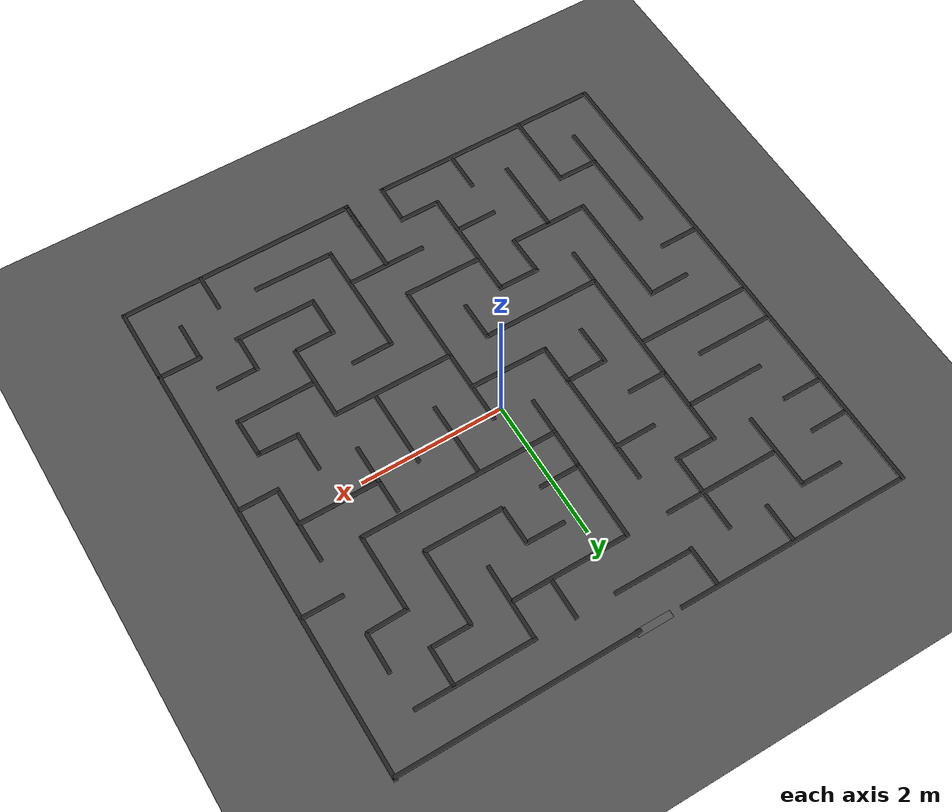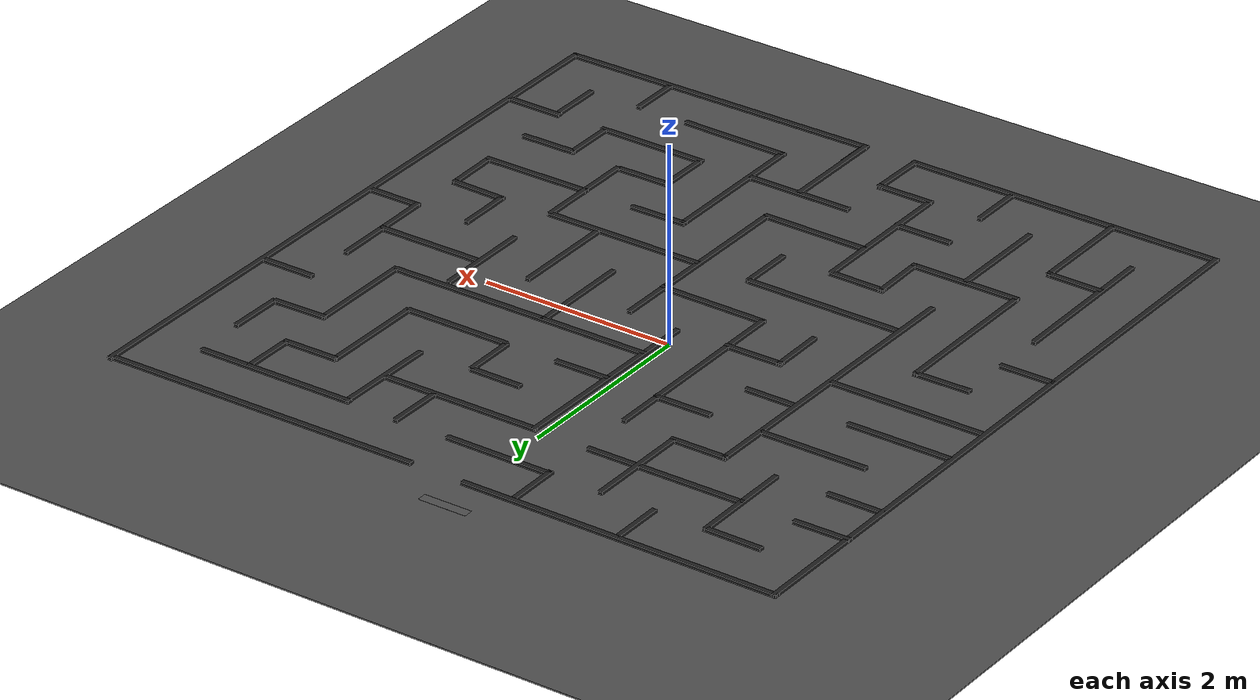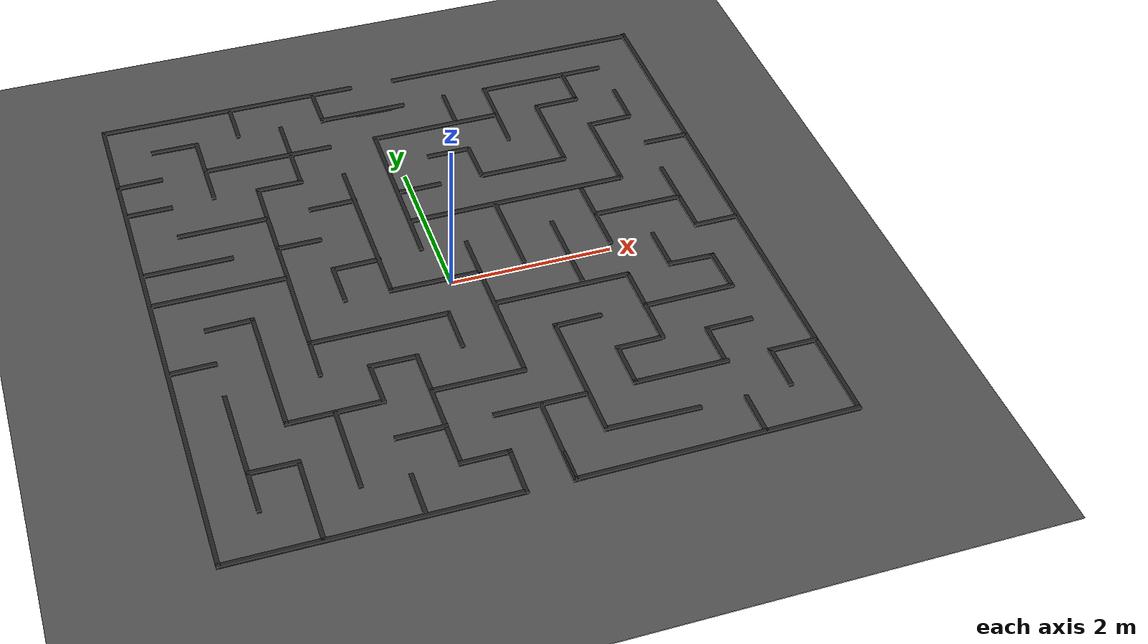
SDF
<sdf version="1.6">
 <world name="default">
  <model name="ground_plane">
   <static>1</static>
   <link name="link">
    <collision name="collision">
     <geometry><plane><normal>0 0 1</normal><size>100 100</size></plane></geometry>
     <surface><friction><ode><mu>100</mu><mu2>50</mu2></ode></friction></surface>
    </collision>
    <visual name="visual">
     <cast_shadows>0</cast_shadows>
     <geometry><plane><normal>0 0 1</normal><size>100 100</size></plane></geometry>
     <material>
      <script><uri>file://media/materials/scripts/gazebo.material</uri><name>Gazebo/Grey</name></script>
     </material>
    </visual>
   </link>
  </model>
  <model name="ibo2maze_0">
   <link name="Wall_0">
    <collision name="Wall_0_Collision">
     <geometry><box><size>7.05733 0.05 0.03</size></box></geometry>
     <pose>0 0 0.37 0 -0 0</pose>
    </collision>
    <visual name="Wall_0_Visual">
     <pose>0 0 0.37 0 -0 0</pose>
     <geometry><box><size>7.05733 0.05 0.03</size></box></geometry>
     <material>
      <script><uri>file://media/materials/scripts/gazebo.material</uri><name>Gazebo/Black</name></script>
      <ambient>0 0 0 1</ambient>
     </material>
    </visual>
    <pose>-3.50243 -0.007222 0 0 0 -1.56961</pose>
   </link>
   <link name="Wall_10">
    <collision name="Wall_10_Collision">
     <geometry><box><size>0.54316 0.05 0.03</size></box></geometry>
     <pose>0 0 0.37 0 -0 0</pose>
    </collision>
    <visual name="Wall_10_Visual">
     <pose>0 0 0.37 0 -0 0</pose>
     <geometry><box><size>0.54316 0.05 0.03</size></box></geometry>
     <material>
      <script><uri>file://media/materials/scripts/gazebo.material</uri><name>Gazebo/Black</name></script>
      <ambient>0 0 0 1</ambient>
     </material>
    </visual>
    <pose>2.41673 -3.23138 0 0 0 -1.5708</pose>
   </link>
   <link name="Wall_101">
    <collision name="Wall_101_Collision">
     <geometry><box><size>1.08875 0.05 0.03</size></box></geometry>
     <pose>0 0 0.37 0 -0 0</pose>
    </collision>
    <visual name="Wall_101_Visual">
     <pose>0 0 0.37 0 -0 0</pose>
     <geometry><box><size>1.08875 0.05 0.03</size></box></geometry>
     <material>
      <script><uri>file://media/materials/scripts/gazebo.material</uri><name>Gazebo/Black</name></script>
      <ambient>0 0 0 1</ambient>
     </material>
    </visual>
    <pose>1.88723 -1.34738 0 0 0 -1.56598</pose>
   </link>
   <link name="Wall_103">
    <collision name="Wall_103_Collision">
     <geometry><box><size>0.557084 0.05 0.03</size></box></geometry>
     <pose>0 0 0.37 0 -0 0</pose>
    </collision>
    <visual name="Wall_103_Visual">
     <pose>0 0 0.37 0 -0 0</pose>
     <geometry><box><size>0.557084 0.05 0.03</size></box></geometry>
     <material>
      <script><uri>file://media/materials/scripts/gazebo.material</uri><name>Gazebo/Black</name></script>
      <ambient>0 0 0 1</ambient>
     </material>
    </visual>
    <pose>1.60123 -1.88438 0 0 -0 0.009862</pose>
   </link>
   <link name="Wall_105">
    <collision name="Wall_105_Collision">
     <geometry><box><size>0.587023 0.05 0.03</size></box></geometry>
     <pose>0 0 0.37 0 -0 0</pose>
    </collision>
    <visual name="Wall_105_Visual">
     <pose>0 0 0.37 0 -0 0</pose>
     <geometry><box><size>0.587023 0.05 0.03</size></box></geometry>
     <material>
      <script><uri>file://media/materials/scripts/gazebo.material</uri><name>Gazebo/Black</name></script>
      <ambient>0 0 0 1</ambient>
     </material>
    </visual>
    <pose>1.34773 -2.15538 0 0 -0 1.5708</pose>
   </link>
   <link name="Wall_107">
    <collision name="Wall_107_Collision">
     <geometry><box><size>1.13403 0.05 0.03</size></box></geometry>
     <pose>0 0 0.37 0 -0 0</pose>
    </collision>
    <visual name="Wall_107_Visual">
     <pose>0 0 0.37 0 -0 0</pose>
     <geometry><box><size>1.13403 0.05 0.03</size></box></geometry>
     <material>
      <script><uri>file://media/materials/scripts/gazebo.material</uri><name>Gazebo/Black</name></script>
      <ambient>0 0 0 1</ambient>
     </material>
    </visual>
    <pose>1.88973 -2.42388 0 0 -0 3.14159</pose>
   </link>
   <link name="Wall_109">
    <collision name="Wall_109_Collision">
     <geometry><box><size>0.521835 0.05 0.03</size></box></geometry>
     <pose>0 0 0.37 0 -0 0</pose>
    </collision>
    <visual name="Wall_109_Visual">
     <pose>0 0 0.37 0 -0 0</pose>
     <geometry><box><size>0.521835 0.05 0.03</size></box></geometry>
     <material>
      <script><uri>file://media/materials/scripts/gazebo.material</uri><name>Gazebo/Black</name></script>
      <ambient>0 0 0 1</ambient>
     </material>
    </visual>
    <pose>2.41173 -2.14288 0 0 0 -1.5708</pose>
   </link>
   <link name="Wall_111">
    <collision name="Wall_111_Collision">
     <geometry><box><size>0.582023 0.05 0.03</size></box></geometry>
     <pose>0 0 0.37 0 -0 0</pose>
    </collision>
    <visual name="Wall_111_Visual">
     <pose>0 0 0.37 0 -0 0</pose>
     <geometry><box><size>0.582023 0.05 0.03</size></box></geometry>
     <material>
      <script><uri>file://media/materials/scripts/gazebo.material</uri><name>Gazebo/Black</name></script>
      <ambient>0 0 0 1</ambient>
     </material>
    </visual>
    <pose>2.67773 -1.90438 0 0 0 -3.13219</pose>
   </link>
   <link name="Wall_113">
    <collision name="Wall_113_Collision">
     <geometry><box><size>1.641 0.05 0.03</size></box></geometry>
     <pose>0 0 0.37 0 -0 0</pose>
    </collision>
    <visual name="Wall_113_Visual">
     <pose>0 0 0.37 0 -0 0</pose>
     <geometry><box><size>1.641 0.05 0.03</size></box></geometry>
     <material>
      <script><uri>file://media/materials/scripts/gazebo.material</uri><name>Gazebo/Black</name></script>
      <ambient>0 0 0 1</ambient>
     </material>
    </visual>
    <pose>1.07523 -0.817883 0 0 -0 0</pose>
   </link>
   <link name="Wall_115">
    <collision name="Wall_115_Collision">
     <geometry><box><size>1.07453 0.05 0.03</size></box></geometry>
     <pose>0 0 0.37 0 -0 0</pose>
    </collision>
    <visual name="Wall_115_Visual">
     <pose>0 0 0.37 0 -0 0</pose>
     <geometry><box><size>1.07453 0.05 0.03</size></box></geometry>
     <material>
      <script><uri>file://media/materials/scripts/gazebo.material</uri><name>Gazebo/Black</name></script>
      <ambient>0 0 0 1</ambient>
     </material>
    </visual>
    <pose>1.34073 -0.245383 0 0 0 -1.56689</pose>
   </link>
   <link name="Wall_117">
    <collision name="Wall_117_Collision">
     <geometry><box><size>1.63678 0.05 0.03</size></box></geometry>
     <pose>0 0 0.37 0 -0 0</pose>
    </collision>
    <visual name="Wall_117_Visual">
     <pose>0 0 0.37 0 -0 0</pose>
     <geometry><box><size>1.63678 0.05 0.03</size></box></geometry>
     <material>
      <script><uri>file://media/materials/scripts/gazebo.material</uri><name>Gazebo/Black</name></script>
      <ambient>0 0 0 1</ambient>
     </material>
    </visual>
    <pose>-1.10477 -0.814883 0 0 0 -0.00252</pose>
   </link>
   <link name="Wall_119">
    <collision name="Wall_119_Collision">
     <geometry><box><size>0.567358 0.05 0.03</size></box></geometry>
     <pose>0 0 0.37 0 -0 0</pose>
    </collision>
    <visual name="Wall_119_Visual">
     <pose>0 0 0.37 0 -0 0</pose>
     <geometry><box><size>0.567358 0.05 0.03</size></box></geometry>
     <material>
      <script><uri>file://media/materials/scripts/gazebo.material</uri><name>Gazebo/Black</name></script>
      <ambient>0 0 0 1</ambient>
     </material>
    </visual>
    <pose>-0.287391 -1.08343 0 0 -0 1.5708</pose>
   </link>
   <link name="Wall_12">
    <collision name="Wall_12_Collision">
     <geometry><box><size>0.595301 0.05 0.03</size></box></geometry>
     <pose>0 0 0.37 0 -0 0</pose>
    </collision>
    <visual name="Wall_12_Visual">
     <pose>0 0 0.37 0 -0 0</pose>
     <geometry><box><size>0.595301 0.05 0.03</size></box></geometry>
     <material>
      <script><uri>file://media/materials/scripts/gazebo.material</uri><name>Gazebo/Black</name></script>
      <ambient>0 0 0 1</ambient>
     </material>
    </visual>
    <pose>3.22266 -2.41896 0 0 0 -0.000276</pose>
   </link>
   <link name="Wall_121">
    <collision name="Wall_121_Collision">
     <geometry><box><size>0.573974 0.05 0.03</size></box></geometry>
     <pose>0 0 0.37 0 -0 0</pose>
    </collision>
    <visual name="Wall_121_Visual">
     <pose>0 0 0.37 0 -0 0</pose>
     <geometry><box><size>0.573974 0.05 0.03</size></box></geometry>
     <material>
      <script><uri>file://media/materials/scripts/gazebo.material</uri><name>Gazebo/Black</name></script>
      <ambient>0 0 0 1</ambient>
     </material>
    </visual>
    <pose>-3.24527 2.41116 0 0 -0 0.0113</pose>
   </link>
   <link name="Wall_123">
    <collision name="Wall_123_Collision">
     <geometry><box><size>0.576958 0.05 0.03</size></box></geometry>
     <pose>0 0 0.37 0 -0 0</pose>
    </collision>
    <visual name="Wall_123_Visual">
     <pose>0 0 0.37 0 -0 0</pose>
     <geometry><box><size>0.576958 0.05 0.03</size></box></geometry>
     <material>
      <script><uri>file://media/materials/scripts/gazebo.material</uri><name>Gazebo/Black</name></script>
      <ambient>0 0 0 1</ambient>
     </material>
    </visual>
    <pose>-3.22577 1.87312 0 0 -0 3.14159</pose>
   </link>
   <link name="Wall_125">
    <collision name="Wall_125_Collision">
     <geometry><box><size>1.09238 0.05 0.03</size></box></geometry>
     <pose>0 0 0.37 0 -0 0</pose>
    </collision>
    <visual name="Wall_125_Visual">
     <pose>0 0 0.37 0 -0 0</pose>
     <geometry><box><size>1.09238 0.05 0.03</size></box></geometry>
     <material>
      <script><uri>file://media/materials/scripts/gazebo.material</uri><name>Gazebo/Black</name></script>
      <ambient>0 0 0 1</ambient>
     </material>
    </visual>
    <pose>-2.43527 1.33762 0 0 -0 0.002879</pose>
   </link>
   <link name="Wall_127">
    <collision name="Wall_127_Collision">
     <geometry><box><size>1.064 0.05 0.03</size></box></geometry>
     <pose>0 0 0.37 0 -0 0</pose>
    </collision>
    <visual name="Wall_127_Visual">
     <pose>0 0 0.37 0 -0 0</pose>
     <geometry><box><size>1.064 0.05 0.03</size></box></geometry>
     <material>
      <script><uri>file://media/materials/scripts/gazebo.material</uri><name>Gazebo/Black</name></script>
      <ambient>0 0 0 1</ambient>
     </material>
    </visual>
    <pose>-2.95358 0.792772 0 0 -0 0</pose>
   </link>
   <link name="Wall_129">
    <collision name="Wall_129_Collision">
     <geometry><box><size>1.08471 0.05 0.03</size></box></geometry>
     <pose>0 0 0.37 0 -0 0</pose>
    </collision>
    <visual name="Wall_129_Visual">
     <pose>0 0 0.37 0 -0 0</pose>
     <geometry><box><size>1.08471 0.05 0.03</size></box></geometry>
     <material>
      <script><uri>file://media/materials/scripts/gazebo.material</uri><name>Gazebo/Black</name></script>
      <ambient>0 0 0 1</ambient>
     </material>
    </visual>
    <pose>-2.42749 2.42492 0 0 0 -1.56456</pose>
   </link>
   <link name="Wall_131">
    <collision name="Wall_131_Collision">
     <geometry><box><size>1.61554 0.05 0.03</size></box></geometry>
     <pose>0 0 0.37 0 -0 0</pose>
    </collision>
    <visual name="Wall_131_Visual">
     <pose>0 0 0.37 0 -0 0</pose>
     <geometry><box><size>1.61554 0.05 0.03</size></box></geometry>
     <material>
      <script><uri>file://media/materials/scripts/gazebo.material</uri><name>Gazebo/Black</name></script>
      <ambient>0 0 0 1</ambient>
     </material>
    </visual>
    <pose>-1.63727 2.41312 0 0 -0 0.002554</pose>
   </link>
   <link name="Wall_133">
    <collision name="Wall_133_Collision">
     <geometry><box><size>1.08315 0.05 0.03</size></box></geometry>
     <pose>0 0 0.37 0 -0 0</pose>
    </collision>
    <visual name="Wall_133_Visual">
     <pose>0 0 0.37 0 -0 0</pose>
     <geometry><box><size>1.08315 0.05 0.03</size></box></geometry>
     <material>
      <script><uri>file://media/materials/scripts/gazebo.material</uri><name>Gazebo/Black</name></script>
      <ambient>0 0 0 1</ambient>
     </material>
    </visual>
    <pose>-1.35127 2.42862 0 0 0 -1.5708</pose>
   </link>
   <link name="Wall_135">
    <collision name="Wall_135_Collision">
     <geometry><box><size>0.589877 0.05 0.03</size></box></geometry>
     <pose>0 0 0.37 0 -0 0</pose>
    </collision>
    <visual name="Wall_135_Visual">
     <pose>0 0 0.37 0 -0 0</pose>
     <geometry><box><size>0.589877 0.05 0.03</size></box></geometry>
     <material>
      <script><uri>file://media/materials/scripts/gazebo.material</uri><name>Gazebo/Black</name></script>
      <ambient>0 0 0 1</ambient>
     </material>
    </visual>
    <pose>-1.61501 1.87411 0 0 -0 0.002618</pose>
   </link>
   <link name="Wall_137">
    <collision name="Wall_137_Collision">
     <geometry><box><size>0.547 0.05 0.03</size></box></geometry>
     <pose>0 0 0.37 0 -0 0</pose>
    </collision>
    <visual name="Wall_137_Visual">
     <pose>0 0 0.37 0 -0 0</pose>
     <geometry><box><size>0.547 0.05 0.03</size></box></geometry>
     <material>
      <script><uri>file://media/materials/scripts/gazebo.material</uri><name>Gazebo/Black</name></script>
      <ambient>0 0 0 1</ambient>
     </material>
    </visual>
    <pose>-1.89527 3.20862 0 0 -0 1.5708</pose>
   </link>
   <link name="Wall_139">
    <collision name="Wall_139_Collision">
     <geometry><box><size>0.555797 0.05 0.03</size></box></geometry>
     <pose>0 0 0.37 0 -0 0</pose>
    </collision>
    <visual name="Wall_139_Visual">
     <pose>0 0 0.37 0 -0 0</pose>
     <geometry><box><size>0.555797 0.05 0.03</size></box></geometry>
     <material>
      <script><uri>file://media/materials/scripts/gazebo.material</uri><name>Gazebo/Black</name></script>
      <ambient>0 0 0 1</ambient>
     </material>
    </visual>
    <pose>-0.808266 3.19612 0 0 -0 1.5787</pose>
   </link>
   <link name="Wall_14">
    <collision name="Wall_14_Collision">
     <geometry><box><size>0.57685 0.05 0.03</size></box></geometry>
     <pose>0 0 0.37 0 -0 0</pose>
    </collision>
    <visual name="Wall_14_Visual">
     <pose>0 0 0.37 0 -0 0</pose>
     <geometry><box><size>0.57685 0.05 0.03</size></box></geometry>
     <material>
      <script><uri>file://media/materials/scripts/gazebo.material</uri><name>Gazebo/Black</name></script>
      <ambient>0 0 0 1</ambient>
     </material>
    </visual>
    <pose>2.95658 -2.68238 0 0 -0 1.5708</pose>
   </link>
   <link name="Wall_141">
    <collision name="Wall_141_Collision">
     <geometry><box><size>1.10075 0.05 0.03</size></box></geometry>
     <pose>0 0 0.37 0 -0 0</pose>
    </collision>
    <visual name="Wall_141_Visual">
     <pose>0 0 0.37 0 -0 0</pose>
     <geometry><box><size>1.10075 0.05 0.03</size></box></geometry>
     <material>
      <script><uri>file://media/materials/scripts/gazebo.material</uri><name>Gazebo/Black</name></script>
      <ambient>0 0 0 1</ambient>
     </material>
    </visual>
    <pose>-0.277639 2.95138 0 0 -0 3.13728</pose>
   </link>
   <link name="Wall_143">
    <collision name="Wall_143_Collision">
     <geometry><box><size>0.595023 0.05 0.03</size></box></geometry>
     <pose>0 0 0.37 0 -0 0</pose>
    </collision>
    <visual name="Wall_143_Visual">
     <pose>0 0 0.37 0 -0 0</pose>
     <geometry><box><size>0.595023 0.05 0.03</size></box></geometry>
     <material>
      <script><uri>file://media/materials/scripts/gazebo.material</uri><name>Gazebo/Black</name></script>
      <ambient>0 0 0 1</ambient>
     </material>
    </visual>
    <pose>-2.70322 2.94477 0 0 0 -0.009174</pose>
   </link>
   <link name="Wall_145">
    <collision name="Wall_145_Collision">
     <geometry><box><size>1.62601 0.05 0.03</size></box></geometry>
     <pose>0 0 0.37 0 -0 0</pose>
    </collision>
    <visual name="Wall_145_Visual">
     <pose>0 0 0.37 0 -0 0</pose>
     <geometry><box><size>1.62601 0.05 0.03</size></box></geometry>
     <material>
      <script><uri>file://media/materials/scripts/gazebo.material</uri><name>Gazebo/Black</name></script>
      <ambient>0 0 0 1</ambient>
     </material>
    </visual>
    <pose>0.52279 2.4088 0 0 -0 0.003807</pose>
   </link>
   <link name="Wall_147">
    <collision name="Wall_147_Collision">
     <geometry><box><size>1.07898 0.05 0.03</size></box></geometry>
     <pose>0 0 0.37 0 -0 0</pose>
    </collision>
    <visual name="Wall_147_Visual">
     <pose>0 0 0.37 0 -0 0</pose>
     <geometry><box><size>1.07898 0.05 0.03</size></box></geometry>
     <material>
      <script><uri>file://media/materials/scripts/gazebo.material</uri><name>Gazebo/Black</name></script>
      <ambient>0 0 0 1</ambient>
     </material>
    </visual>
    <pose>1.34522 2.42762 0 0 0 -1.5834</pose>
   </link>
   <link name="Wall_149">
    <collision name="Wall_149_Collision">
     <geometry><box><size>1.62001 0.05 0.03</size></box></geometry>
     <pose>0 0 0.37 0 -0 0</pose>
    </collision>
    <visual name="Wall_149_Visual">
     <pose>0 0 0.37 0 -0 0</pose>
     <geometry><box><size>1.62001 0.05 0.03</size></box></geometry>
     <material>
      <script><uri>file://media/materials/scripts/gazebo.material</uri><name>Gazebo/Black</name></script>
      <ambient>0 0 0 1</ambient>
     </material>
    </visual>
    <pose>2.13238 2.94459 0 0 -0 0.003185</pose>
   </link>
   <link name="Wall_151">
    <collision name="Wall_151_Collision">
     <geometry><box><size>0.560016 0.05 0.03</size></box></geometry>
     <pose>0 0 0.37 0 -0 0</pose>
    </collision>
    <visual name="Wall_151_Visual">
     <pose>0 0 0.37 0 -0 0</pose>
     <geometry><box><size>0.560016 0.05 0.03</size></box></geometry>
     <material>
      <script><uri>file://media/materials/scripts/gazebo.material</uri><name>Gazebo/Black</name></script>
      <ambient>0 0 0 1</ambient>
     </material>
    </visual>
    <pose>2.41773 2.67012 0 0 -0 1.56295</pose>
   </link>
   <link name="Wall_153">
    <collision name="Wall_153_Collision">
     <geometry><box><size>0.573013 0.05 0.03</size></box></geometry>
     <pose>0 0 0.37 0 -0 0</pose>
    </collision>
    <visual name="Wall_153_Visual">
     <pose>0 0 0.37 0 -0 0</pose>
     <geometry><box><size>0.573013 0.05 0.03</size></box></geometry>
     <material>
      <script><uri>file://media/materials/scripts/gazebo.material</uri><name>Gazebo/Black</name></script>
      <ambient>0 0 0 1</ambient>
     </material>
    </visual>
    <pose>2.15423 2.41312 0 0 -0 0.007648</pose>
   </link>
   <link name="Wall_155">
    <collision name="Wall_155_Collision">
     <geometry><box><size>1.08393 0.05 0.03</size></box></geometry>
     <pose>0 0 0.37 0 -0 0</pose>
    </collision>
    <visual name="Wall_155_Visual">
     <pose>0 0 0.37 0 -0 0</pose>
     <geometry><box><size>1.08393 0.05 0.03</size></box></geometry>
     <material>
      <script><uri>file://media/materials/scripts/gazebo.material</uri><name>Gazebo/Black</name></script>
      <ambient>0 0 0 1</ambient>
     </material>
    </visual>
    <pose>1.87888 1.87677 0 0 -0 1.56989</pose>
   </link>
   <link name="Wall_157">
    <collision name="Wall_157_Collision">
     <geometry><box><size>1.084 0.05 0.03</size></box></geometry>
     <pose>0 0 0.37 0 -0 0</pose>
    </collision>
    <visual name="Wall_157_Visual">
     <pose>0 0 0.37 0 -0 0</pose>
     <geometry><box><size>1.084 0.05 0.03</size></box></geometry>
     <material>
      <script><uri>file://media/materials/scripts/gazebo.material</uri><name>Gazebo/Black</name></script>
      <ambient>0 0 0 1</ambient>
     </material>
    </visual>
    <pose>1.3441 1.34012 0 0 -0 0</pose>
   </link>
   <link name="Wall_159">
    <collision name="Wall_159_Collision">
     <geometry><box><size>0.542009 0.05 0.03</size></box></geometry>
     <pose>0 0 0.37 0 -0 0</pose>
    </collision>
    <visual name="Wall_159_Visual">
     <pose>0 0 0.37 0 -0 0</pose>
     <geometry><box><size>0.542009 0.05 0.03</size></box></geometry>
     <material>
      <script><uri>file://media/materials/scripts/gazebo.material</uri><name>Gazebo/Black</name></script>
      <ambient>0 0 0 1</ambient>
     </material>
    </visual>
    <pose>0.799706 1.61175 0 0 0 -1.5647</pose>
   </link>
   <link name="Wall_16">
    <collision name="Wall_16_Collision">
     <geometry><box><size>1.11506 0.05 0.03</size></box></geometry>
     <pose>0 0 0.37 0 -0 0</pose>
    </collision>
    <visual name="Wall_16_Visual">
     <pose>0 0 0.37 0 -0 0</pose>
     <geometry><box><size>1.11506 0.05 0.03</size></box></geometry>
     <material>
      <script><uri>file://media/materials/scripts/gazebo.material</uri><name>Gazebo/Black</name></script>
      <ambient>0 0 0 1</ambient>
     </material>
    </visual>
    <pose>0.260659 -2.97838 0 0 0 -1.57094</pose>
   </link>
   <link name="Wall_161">
    <collision name="Wall_161_Collision">
     <geometry><box><size>0.539009 0.05 0.03</size></box></geometry>
     <pose>0 0 0.37 0 -0 0</pose>
    </collision>
    <visual name="Wall_161_Visual">
     <pose>0 0 0.37 0 -0 0</pose>
     <geometry><box><size>0.539009 0.05 0.03</size></box></geometry>
     <material>
      <script><uri>file://media/materials/scripts/gazebo.material</uri><name>Gazebo/Black</name></script>
      <ambient>0 0 0 1</ambient>
     </material>
    </visual>
    <pose>0.537132 1.87577 0 0 0 -0.006135</pose>
   </link>
   <link name="Wall_163">
    <collision name="Wall_163_Collision">
     <geometry><box><size>0.562483 0.05 0.03</size></box></geometry>
     <pose>0 0 0.37 0 -0 0</pose>
    </collision>
    <visual name="Wall_163_Visual">
     <pose>0 0 0.37 0 -0 0</pose>
     <geometry><box><size>0.562483 0.05 0.03</size></box></geometry>
     <material>
      <script><uri>file://media/materials/scripts/gazebo.material</uri><name>Gazebo/Black</name></script>
      <ambient>0 0 0 1</ambient>
     </material>
    </visual>
    <pose>-0.001266 1.33762 0 0 -0 0.009765</pose>
   </link>
   <link name="Wall_165">
    <collision name="Wall_165_Collision">
     <geometry><box><size>0.539 0.05 0.03</size></box></geometry>
     <pose>0 0 0.37 0 -0 0</pose>
    </collision>
    <visual name="Wall_165_Visual">
     <pose>0 0 0.37 0 -0 0</pose>
     <geometry><box><size>0.539 0.05 0.03</size></box></geometry>
     <material>
      <script><uri>file://media/materials/scripts/gazebo.material</uri><name>Gazebo/Black</name></script>
      <ambient>0 0 0 1</ambient>
     </material>
    </visual>
    <pose>-1.62944 0.795117 0 0 -0 0</pose>
   </link>
   <link name="Wall_167">
    <collision name="Wall_167_Collision">
     <geometry><box><size>0.560258 0.05 0.03</size></box></geometry>
     <pose>0 0 0.37 0 -0 0</pose>
    </collision>
    <visual name="Wall_167_Visual">
     <pose>0 0 0.37 0 -0 0</pose>
     <geometry><box><size>0.560258 0.05 0.03</size></box></geometry>
     <material>
      <script><uri>file://media/materials/scripts/gazebo.material</uri><name>Gazebo/Black</name></script>
      <ambient>0 0 0 1</ambient>
     </material>
    </visual>
    <pose>0.804234 2.70212 0 0 0 -1.5806</pose>
   </link>
   <link name="Wall_169">
    <collision name="Wall_169_Collision">
     <geometry><box><size>0.556215 0.05 0.03</size></box></geometry>
     <pose>0 0 0.37 0 -0 0</pose>
    </collision>
    <visual name="Wall_169_Visual">
     <pose>0 0 0.37 0 -0 0</pose>
     <geometry><box><size>0.556215 0.05 0.03</size></box></geometry>
     <material>
      <script><uri>file://media/materials/scripts/gazebo.material</uri><name>Gazebo/Black</name></script>
      <ambient>0 0 0 1</ambient>
     </material>
    </visual>
    <pose>3.22073 1.33612 0 0 -0 0</pose>
   </link>
   <link name="Wall_17">
    <collision name="Wall_17_Collision">
     <geometry><box><size>0.400275 0.05 0.03</size></box></geometry>
     <pose>0 0 0.37 0 -0 0</pose>
    </collision>
    <visual name="Wall_17_Visual">
     <pose>0 0 0.37 0 -0 0</pose>
     <geometry><box><size>0.400275 0.05 0.03</size></box></geometry>
     <material>
      <script><uri>file://media/materials/scripts/gazebo.material</uri><name>Gazebo/Black</name></script>
      <ambient>0 0 0 1</ambient>
     </material>
    </visual>
    <pose>0.267159 -3.33588 0 0 -0 1.5708</pose>
   </link>
   <link name="Wall_171">
    <collision name="Wall_171_Collision">
     <geometry><box><size>0.563985 0.05 0.03</size></box></geometry>
     <pose>0 0 0.37 0 -0 0</pose>
    </collision>
    <visual name="Wall_171_Visual">
     <pose>0 0 0.37 0 -0 0</pose>
     <geometry><box><size>0.563985 0.05 0.03</size></box></geometry>
     <material>
      <script><uri>file://media/materials/scripts/gazebo.material</uri><name>Gazebo/Black</name></script>
      <ambient>0 0 0 1</ambient>
     </material>
    </visual>
    <pose>2.95273 2.15912 0 0 0 -1.57858</pose>
   </link>
   <link name="Wall_173">
    <collision name="Wall_173_Collision">
     <geometry><box><size>0.563271 0.05 0.03</size></box></geometry>
     <pose>0 0 0.37 0 -0 0</pose>
    </collision>
    <visual name="Wall_173_Visual">
     <pose>0 0 0.37 0 -0 0</pose>
     <geometry><box><size>0.563271 0.05 0.03</size></box></geometry>
     <material>
      <script><uri>file://media/materials/scripts/gazebo.material</uri><name>Gazebo/Black</name></script>
      <ambient>0 0 0 1</ambient>
     </material>
    </visual>
    <pose>2.67215 1.8782 0 0 -0 0.02693</pose>
   </link>
   <link name="Wall_175">
    <collision name="Wall_175_Collision">
     <geometry><box><size>1.11244 0.05 0.03</size></box></geometry>
     <pose>0 0 0.37 0 -0 0</pose>
    </collision>
    <visual name="Wall_175_Visual">
     <pose>0 0 0.37 0 -0 0</pose>
     <geometry><box><size>1.11244 0.05 0.03</size></box></geometry>
     <material>
      <script><uri>file://media/materials/scripts/gazebo.material</uri><name>Gazebo/Black</name></script>
      <ambient>0 0 0 1</ambient>
     </material>
    </visual>
    <pose>2.41721 1.34008 0 0 0 -1.56772</pose>
   </link>
   <link name="Wall_19">
    <collision name="Wall_19_Collision">
     <geometry><box><size>1.08267 0.05 0.03</size></box></geometry>
     <pose>0 0 0.37 0 -0 0</pose>
    </collision>
    <visual name="Wall_19_Visual">
     <pose>0 0 0.37 0 -0 0</pose>
     <geometry><box><size>1.08267 0.05 0.03</size></box></geometry>
     <material>
      <script><uri>file://media/materials/scripts/gazebo.material</uri><name>Gazebo/Black</name></script>
      <ambient>0 0 0 1</ambient>
     </material>
    </visual>
    <pose>0.257234 -2.42588 0 0 -0 0</pose>
   </link>
   <link name="Wall_2">
    <collision name="Wall_2_Collision">
     <geometry><box><size>3.248 0.05 0.03</size></box></geometry>
     <pose>0 0 0.37 0 -0 0</pose>
    </collision>
    <visual name="Wall_2_Visual">
     <pose>0 0 0.37 0 -0 0</pose>
     <geometry><box><size>3.248 0.05 0.03</size></box></geometry>
     <material>
      <script><uri>file://media/materials/scripts/gazebo.material</uri><name>Gazebo/Black</name></script>
      <ambient>0 0 0 1</ambient>
     </material>
    </visual>
    <pose>-1.90759 3.49394 0 0 -0 3.14003</pose>
   </link>
   <link name="Wall_21">
    <collision name="Wall_21_Collision">
     <geometry><box><size>1.64813 0.05 0.03</size></box></geometry>
     <pose>0 0 0.37 0 -0 0</pose>
    </collision>
    <visual name="Wall_21_Visual">
     <pose>0 0 0.37 0 -0 0</pose>
     <geometry><box><size>1.64813 0.05 0.03</size></box></geometry>
     <material>
      <script><uri>file://media/materials/scripts/gazebo.material</uri><name>Gazebo/Black</name></script>
      <ambient>0 0 0 1</ambient>
     </material>
    </visual>
    <pose>0.803365 -2.15919 0 0 0 -1.56715</pose>
   </link>
   <link name="Wall_23">
    <collision name="Wall_23_Collision">
     <geometry><box><size>1.11554 0.05 0.03</size></box></geometry>
     <pose>0 0 0.37 0 -0 0</pose>
    </collision>
    <visual name="Wall_23_Visual">
     <pose>0 0 0.37 0 -0 0</pose>
     <geometry><box><size>1.11554 0.05 0.03</size></box></geometry>
     <material>
      <script><uri>file://media/materials/scripts/gazebo.material</uri><name>Gazebo/Black</name></script>
      <ambient>0 0 0 1</ambient>
     </material>
    </visual>
    <pose>1.33901 -2.96524 0 0 -0 3.12913</pose>
   </link>
   <link name="Wall_25">
    <collision name="Wall_25_Collision">
     <geometry><box><size>0.589072 0.05 0.03</size></box></geometry>
     <pose>0 0 0.37 0 -0 0</pose>
    </collision>
    <visual name="Wall_25_Visual">
     <pose>0 0 0.37 0 -0 0</pose>
     <geometry><box><size>0.589072 0.05 0.03</size></box></geometry>
     <material>
      <script><uri>file://media/materials/scripts/gazebo.material</uri><name>Gazebo/Black</name></script>
      <ambient>0 0 0 1</ambient>
     </material>
    </visual>
    <pose>1.06959 -1.35533 0 0 0 -3.12506</pose>
   </link>
   <link name="Wall_27">
    <collision name="Wall_27_Collision">
     <geometry><box><size>3.2721 0.05 0.03</size></box></geometry>
     <pose>0 0 0.37 0 -0 0</pose>
    </collision>
    <visual name="Wall_27_Visual">
     <pose>0 0 0.37 0 -0 0</pose>
     <geometry><box><size>3.2721 0.05 0.03</size></box></geometry>
     <material>
      <script><uri>file://media/materials/scripts/gazebo.material</uri><name>Gazebo/Black</name></script>
      <ambient>0 0 0 1</ambient>
     </material>
    </visual>
    <pose>-1.88722 -3.51296 0 0 -0 3.14031</pose>
   </link>
   <link name="Wall_29">
    <collision name="Wall_29_Collision">
     <geometry><box><size>0.607073 0.05 0.03</size></box></geometry>
     <pose>0 0 0.37 0 -0 0</pose>
    </collision>
    <visual name="Wall_29_Visual">
     <pose>0 0 0.37 0 -0 0</pose>
     <geometry><box><size>0.607073 0.05 0.03</size></box></geometry>
     <material>
      <script><uri>file://media/materials/scripts/gazebo.material</uri><name>Gazebo/Black</name></script>
      <ambient>0 0 0 1</ambient>
     </material>
    </visual>
    <pose>-0.273795 -3.23646 0 0 0 -1.58705</pose>
   </link>
   <link name="Wall_31">
    <collision name="Wall_31_Collision">
     <geometry><box><size>0.589035 0.05 0.03</size></box></geometry>
     <pose>0 0 0.37 0 -0 0</pose>
    </collision>
    <visual name="Wall_31_Visual">
     <pose>0 0 0.37 0 -0 0</pose>
     <geometry><box><size>0.589035 0.05 0.03</size></box></geometry>
     <material>
      <script><uri>file://media/materials/scripts/gazebo.material</uri><name>Gazebo/Black</name></script>
      <ambient>0 0 0 1</ambient>
     </material>
    </visual>
    <pose>-0.538766 -2.95788 0 0 -0 0</pose>
   </link>
   <link name="Wall_33">
    <collision name="Wall_33_Collision">
     <geometry><box><size>1.65258 0.05 0.03</size></box></geometry>
     <pose>0 0 0.37 0 -0 0</pose>
    </collision>
    <visual name="Wall_33_Visual">
     <pose>0 0 0.37 0 -0 0</pose>
     <geometry><box><size>1.65258 0.05 0.03</size></box></geometry>
     <material>
      <script><uri>file://media/materials/scripts/gazebo.material</uri><name>Gazebo/Black</name></script>
      <ambient>0 0 0 1</ambient>
     </material>
    </visual>
    <pose>-0.811266 -2.15638 0 0 0 -1.56705</pose>
   </link>
   <link name="Wall_35">
    <collision name="Wall_35_Collision">
     <geometry><box><size>0.537019 0.05 0.03</size></box></geometry>
     <pose>0 0 0.37 0 -0 0</pose>
    </collision>
    <visual name="Wall_35_Visual">
     <pose>0 0 0.37 0 -0 0</pose>
     <geometry><box><size>0.537019 0.05 0.03</size></box></geometry>
     <material>
      <script><uri>file://media/materials/scripts/gazebo.material</uri><name>Gazebo/Black</name></script>
      <ambient>0 0 0 1</ambient>
     </material>
    </visual>
    <pose>-1.34727 -3.21538 0 0 0 -1.5708</pose>
   </link>
   <link name="Wall_37">
    <collision name="Wall_37_Collision">
     <geometry><box><size>1.08932 0.05 0.03</size></box></geometry>
     <pose>0 0 0.37 0 -0 0</pose>
    </collision>
    <visual name="Wall_37_Visual">
     <pose>0 0 0.37 0 -0 0</pose>
     <geometry><box><size>1.08932 0.05 0.03</size></box></geometry>
     <material>
      <script><uri>file://media/materials/scripts/gazebo.material</uri><name>Gazebo/Black</name></script>
      <ambient>0 0 0 1</ambient>
     </material>
    </visual>
    <pose>-2.41827 -2.96538 0 0 0 -1.5708</pose>
   </link>
   <link name="Wall_39">
    <collision name="Wall_39_Collision">
     <geometry><box><size>0.583034 0.05 0.03</size></box></geometry>
     <pose>0 0 0.37 0 -0 0</pose>
    </collision>
    <visual name="Wall_39_Visual">
     <pose>0 0 0.37 0 -0 0</pose>
     <geometry><box><size>0.583034 0.05 0.03</size></box></geometry>
     <material>
      <script><uri>file://media/materials/scripts/gazebo.material</uri><name>Gazebo/Black</name></script>
      <ambient>0 0 0 1</ambient>
     </material>
    </visual>
    <pose>-2.68477 -2.44288 0 0 0 -0.011257</pose>
   </link>
   <link name="Wall_4">
    <collision name="Wall_4_Collision">
     <geometry><box><size>3.27061 0.05 0.03</size></box></geometry>
     <pose>0 0 0.37 0 -0 0</pose>
    </collision>
    <visual name="Wall_4_Visual">
     <pose>0 0 0.37 0 -0 0</pose>
     <geometry><box><size>3.27061 0.05 0.03</size></box></geometry>
     <material>
      <script><uri>file://media/materials/scripts/gazebo.material</uri><name>Gazebo/Black</name></script>
      <ambient>0 0 0 1</ambient>
     </material>
    </visual>
    <pose>1.89021 3.48914 0 0 0 -3.13619</pose>
   </link>
   <link name="Wall_41">
    <collision name="Wall_41_Collision">
     <geometry><box><size>1.65369 0.05 0.03</size></box></geometry>
     <pose>0 0 0.37 0 -0 0</pose>
    </collision>
    <visual name="Wall_41_Visual">
     <pose>0 0 0.37 0 -0 0</pose>
     <geometry><box><size>1.65369 0.05 0.03</size></box></geometry>
     <material>
      <script><uri>file://media/materials/scripts/gazebo.material</uri><name>Gazebo/Black</name></script>
      <ambient>0 0 0 1</ambient>
     </material>
    </visual>
    <pose>-2.96548 -2.14372 0 0 0 -1.56358</pose>
   </link>
   <link name="Wall_43">
    <collision name="Wall_43_Collision">
     <geometry><box><size>1.076 0.05 0.03</size></box></geometry>
     <pose>0 0 0.37 0 -0 0</pose>
    </collision>
    <visual name="Wall_43_Visual">
     <pose>0 0 0.37 0 -0 0</pose>
     <geometry><box><size>1.076 0.05 0.03</size></box></geometry>
     <material>
      <script><uri>file://media/materials/scripts/gazebo.material</uri><name>Gazebo/Black</name></script>
      <ambient>0 0 0 1</ambient>
     </material>
    </visual>
    <pose>-1.88512 -2.42403 0 0 0 -1.5708</pose>
   </link>
   <link name="Wall_45">
    <collision name="Wall_45_Collision">
     <geometry><box><size>1.12959 0.05 0.03</size></box></geometry>
     <pose>0 0 0.37 0 -0 0</pose>
    </collision>
    <visual name="Wall_45_Visual">
     <pose>0 0 0.37 0 -0 0</pose>
     <geometry><box><size>1.12959 0.05 0.03</size></box></geometry>
     <material>
      <script><uri>file://media/materials/scripts/gazebo.material</uri><name>Gazebo/Black</name></script>
      <ambient>0 0 0 1</ambient>
     </material>
    </visual>
    <pose>-1.88447 -1.89026 0 0 -0 0.003006</pose>
   </link>
   <link name="Wall_47">
    <collision name="Wall_47_Collision">
     <geometry><box><size>1.67016 0.05 0.03</size></box></geometry>
     <pose>0 0 0.37 0 -0 0</pose>
    </collision>
    <visual name="Wall_47_Visual">
     <pose>0 0 0.37 0 -0 0</pose>
     <geometry><box><size>1.67016 0.05 0.03</size></box></geometry>
     <material>
      <script><uri>file://media/materials/scripts/gazebo.material</uri><name>Gazebo/Black</name></script>
      <ambient>0 0 0 1</ambient>
     </material>
    </visual>
    <pose>-2.42619 -1.0818 0 0 0 -1.56842</pose>
   </link>
   <link name="Wall_49">
    <collision name="Wall_49_Collision">
     <geometry><box><size>0.58294 0.05 0.03</size></box></geometry>
     <pose>0 0 0.37 0 -0 0</pose>
    </collision>
    <visual name="Wall_49_Visual">
     <pose>0 0 0.37 0 -0 0</pose>
     <geometry><box><size>0.58294 0.05 0.03</size></box></geometry>
     <material>
      <script><uri>file://media/materials/scripts/gazebo.material</uri><name>Gazebo/Black</name></script>
      <ambient>0 0 0 1</ambient>
     </material>
    </visual>
    <pose>-2.69454 -0.276627 0 0 -0 0.018403</pose>
   </link>
   <link name="Wall_51">
    <collision name="Wall_51_Collision">
     <geometry><box><size>0.558738 0.05 0.03</size></box></geometry>
     <pose>0 0 0.37 0 -0 0</pose>
    </collision>
    <visual name="Wall_51_Visual">
     <pose>0 0 0.37 0 -0 0</pose>
     <geometry><box><size>0.558738 0.05 0.03</size></box></geometry>
     <material>
      <script><uri>file://media/materials/scripts/gazebo.material</uri><name>Gazebo/Black</name></script>
      <ambient>0 0 0 1</ambient>
     </material>
    </visual>
    <pose>-3.22601 -0.817592 0 0 0 -3.13332</pose>
   </link>
   <link name="Wall_53">
    <collision name="Wall_53_Collision">
     <geometry><box><size>1.58 0.05 0.03</size></box></geometry>
     <pose>0 0 0.37 0 -0 0</pose>
    </collision>
    <visual name="Wall_53_Visual">
     <pose>0 0 0.37 0 -0 0</pose>
     <geometry><box><size>1.58 0.05 0.03</size></box></geometry>
     <material>
      <script><uri>file://media/materials/scripts/gazebo.material</uri><name>Gazebo/Black</name></script>
      <ambient>0 0 0 1</ambient>
     </material>
    </visual>
    <pose>-2.69484 0.278117 0 0 -0 0</pose>
   </link>
   <link name="Wall_55">
    <collision name="Wall_55_Collision">
     <geometry><box><size>3.23035 0.05 0.03</size></box></geometry>
     <pose>0 0 0.37 0 -0 0</pose>
    </collision>
    <visual name="Wall_55_Visual">
     <pose>0 0 0.37 0 -0 0</pose>
     <geometry><box><size>3.23035 0.05 0.03</size></box></geometry>
     <material>
      <script><uri>file://media/materials/scripts/gazebo.material</uri><name>Gazebo/Black</name></script>
      <ambient>0 0 0 1</ambient>
     </material>
    </visual>
    <pose>-1.89511 0.283259 0 0 0 -1.57719</pose>
   </link>
   <link name="Wall_59">
    <collision name="Wall_59_Collision">
     <geometry><box><size>0.591023 0.05 0.03</size></box></geometry>
     <pose>0 0 0.37 0 -0 0</pose>
    </collision>
    <visual name="Wall_59_Visual">
     <pose>0 0 0.37 0 -0 0</pose>
     <geometry><box><size>0.591023 0.05 0.03</size></box></geometry>
     <material>
      <script><uri>file://media/materials/scripts/gazebo.material</uri><name>Gazebo/Black</name></script>
      <ambient>0 0 0 1</ambient>
     </material>
    </visual>
    <pose>-1.08477 -1.35238 0 0 0 -0.009242</pose>
   </link>
   <link name="Wall_6">
    <collision name="Wall_6_Collision">
     <geometry><box><size>7.02654 0.05 0.03</size></box></geometry>
     <pose>0 0 0.37 0 -0 0</pose>
    </collision>
    <visual name="Wall_6_Visual">
     <pose>0 0 0.37 0 -0 0</pose>
     <geometry><box><size>7.02654 0.05 0.03</size></box></geometry>
     <material>
      <script><uri>file://media/materials/scripts/gazebo.material</uri><name>Gazebo/Black</name></script>
      <ambient>0 0 0 1</ambient>
     </material>
    </visual>
    <pose>3.50355 0.027067 0 0 -0 1.57173</pose>
   </link>
   <link name="Wall_61">
    <collision name="Wall_61_Collision">
     <geometry><box><size>0.589024 0.05 0.03</size></box></geometry>
     <pose>0 0 0.37 0 -0 0</pose>
    </collision>
    <visual name="Wall_61_Visual">
     <pose>0 0 0.37 0 -0 0</pose>
     <geometry><box><size>0.589024 0.05 0.03</size></box></geometry>
     <material>
      <script><uri>file://media/materials/scripts/gazebo.material</uri><name>Gazebo/Black</name></script>
      <ambient>0 0 0 1</ambient>
     </material>
    </visual>
    <pose>-1.34997 -1.61926 0 0 -0 1.59044</pose>
   </link>
   <link name="Wall_63">
    <collision name="Wall_63_Collision">
     <geometry><box><size>0.599 0.05 0.03</size></box></geometry>
     <pose>0 0 0.37 0 -0 0</pose>
    </collision>
    <visual name="Wall_63_Visual">
     <pose>0 0 0.37 0 -0 0</pose>
     <geometry><box><size>0.599 0.05 0.03</size></box></geometry>
     <material>
      <script><uri>file://media/materials/scripts/gazebo.material</uri><name>Gazebo/Black</name></script>
      <ambient>0 0 0 1</ambient>
     </material>
    </visual>
    <pose>-1.08077 -2.42788 0 0 -0 0</pose>
   </link>
   <link name="Wall_65">
    <collision name="Wall_65_Collision">
     <geometry><box><size>1.09309 0.05 0.03</size></box></geometry>
     <pose>0 0 0.37 0 -0 0</pose>
    </collision>
    <visual name="Wall_65_Visual">
     <pose>0 0 0.37 0 -0 0</pose>
     <geometry><box><size>1.09309 0.05 0.03</size></box></geometry>
     <material>
      <script><uri>file://media/materials/scripts/gazebo.material</uri><name>Gazebo/Black</name></script>
      <ambient>0 0 0 1</ambient>
     </material>
    </visual>
    <pose>-0.272766 -1.89588 0 0 0 -0.00767</pose>
   </link>
   <link name="Wall_67">
    <collision name="Wall_67_Collision">
     <geometry><box><size>2.159 0.05 0.03</size></box></geometry>
     <pose>0 0 0.37 0 -0 0</pose>
    </collision>
    <visual name="Wall_67_Visual">
     <pose>0 0 0.37 0 -0 0</pose>
     <geometry><box><size>2.159 0.05 0.03</size></box></geometry>
     <material>
      <script><uri>file://media/materials/scripts/gazebo.material</uri><name>Gazebo/Black</name></script>
      <ambient>0 0 0 1</ambient>
     </material>
    </visual>
    <pose>0.256611 -0.822068 0 0 0 -1.5708</pose>
   </link>
   <link name="Wall_69">
    <collision name="Wall_69_Collision">
     <geometry><box><size>1.11615 0.05 0.03</size></box></geometry>
     <pose>0 0 0.37 0 -0 0</pose>
    </collision>
    <visual name="Wall_69_Visual">
     <pose>0 0 0.37 0 -0 0</pose>
     <geometry><box><size>1.11615 0.05 0.03</size></box></geometry>
     <material>
      <script><uri>file://media/materials/scripts/gazebo.material</uri><name>Gazebo/Black</name></script>
      <ambient>0 0 0 1</ambient>
     </material>
    </visual>
    <pose>-0.273102 -0.277366 0 0 0 -0.008064</pose>
   </link>
   <link name="Wall_71">
    <collision name="Wall_71_Collision">
     <geometry><box><size>2.13701 0.05 0.03</size></box></geometry>
     <pose>0 0 0.37 0 -0 0</pose>
    </collision>
    <visual name="Wall_71_Visual">
     <pose>0 0 0.37 0 -0 0</pose>
     <geometry><box><size>2.13701 0.05 0.03</size></box></geometry>
     <material>
      <script><uri>file://media/materials/scripts/gazebo.material</uri><name>Gazebo/Black</name></script>
      <ambient>0 0 0 1</ambient>
     </material>
    </visual>
    <pose>-0.811201 0.791464 0 0 0 -1.56744</pose>
   </link>
   <link name="Wall_73">
    <collision name="Wall_73_Collision">
     <geometry><box><size>0.605032 0.05 0.03</size></box></geometry>
     <pose>0 0 0.37 0 -0 0</pose>
    </collision>
    <visual name="Wall_73_Visual">
     <pose>0 0 0.37 0 -0 0</pose>
     <geometry><box><size>0.605032 0.05 0.03</size></box></geometry>
     <material>
      <script><uri>file://media/materials/scripts/gazebo.material</uri><name>Gazebo/Black</name></script>
      <ambient>0 0 0 1</ambient>
     </material>
    </visual>
    <pose>-1.07977 0.262117 0 0 -0 0.01081</pose>
   </link>
   <link name="Wall_75">
    <collision name="Wall_75_Collision">
     <geometry><box><size>0.576034 0.05 0.03</size></box></geometry>
     <pose>0 0 0.37 0 -0 0</pose>
    </collision>
    <visual name="Wall_75_Visual">
     <pose>0 0 0.37 0 -0 0</pose>
     <geometry><box><size>0.576034 0.05 0.03</size></box></geometry>
     <material>
      <script><uri>file://media/materials/scripts/gazebo.material</uri><name>Gazebo/Black</name></script>
      <ambient>0 0 0 1</ambient>
     </material>
    </visual>
    <pose>-1.35427 -0.003883 0 0 -0 1.5822</pose>
   </link>
   <link name="Wall_77">
    <collision name="Wall_77_Collision">
     <geometry><box><size>0.593259 0.05 0.03</size></box></geometry>
     <pose>0 0 0.37 0 -0 0</pose>
    </collision>
    <visual name="Wall_77_Visual">
     <pose>0 0 0.37 0 -0 0</pose>
     <geometry><box><size>0.593259 0.05 0.03</size></box></geometry>
     <material>
      <script><uri>file://media/materials/scripts/gazebo.material</uri><name>Gazebo/Black</name></script>
      <ambient>0 0 0 1</ambient>
     </material>
    </visual>
    <pose>-1.07977 1.34862 0 0 -0 0.009208</pose>
   </link>
   <link name="Wall_79">
    <collision name="Wall_79_Collision">
     <geometry><box><size>2.15573 0.05 0.03</size></box></geometry>
     <pose>0 0 0.37 0 -0 0</pose>
    </collision>
    <visual name="Wall_79_Visual">
     <pose>0 0 0.37 0 -0 0</pose>
     <geometry><box><size>2.15573 0.05 0.03</size></box></geometry>
     <material>
      <script><uri>file://media/materials/scripts/gazebo.material</uri><name>Gazebo/Black</name></script>
      <ambient>0 0 0 1</ambient>
     </material>
    </visual>
    <pose>-0.273738 1.35296 0 0 0 -1.5789</pose>
   </link>
   <link name="Wall_8">
    <collision name="Wall_8_Collision">
     <geometry><box><size>3.29732 0.05 0.03</size></box></geometry>
     <pose>0 0 0.37 0 -0 0</pose>
    </collision>
    <visual name="Wall_8_Visual">
     <pose>0 0 0.37 0 -0 0</pose>
     <geometry><box><size>3.29732 0.05 0.03</size></box></geometry>
     <material>
      <script><uri>file://media/materials/scripts/gazebo.material</uri><name>Gazebo/Black</name></script>
      <ambient>0 0 0 1</ambient>
     </material>
    </visual>
    <pose>1.88369 -3.49479 0 0 -0 0.009916</pose>
   </link>
   <link name="Wall_81">
    <collision name="Wall_81_Collision">
     <geometry><box><size>2.72528 0.05 0.03</size></box></geometry>
     <pose>0 0 0.37 0 -0 0</pose>
    </collision>
    <visual name="Wall_81_Visual">
     <pose>0 0 0.37 0 -0 0</pose>
     <geometry><box><size>2.72528 0.05 0.03</size></box></geometry>
     <material>
      <script><uri>file://media/materials/scripts/gazebo.material</uri><name>Gazebo/Black</name></script>
      <ambient>0 0 0 1</ambient>
     </material>
    </visual>
    <pose>1.06137 0.798373 0 0 -0 0.002435</pose>
   </link>
   <link name="Wall_83">
    <collision name="Wall_83_Collision">
     <geometry><box><size>1.08808 0.05 0.03</size></box></geometry>
     <pose>0 0 0.37 0 -0 0</pose>
    </collision>
    <visual name="Wall_83_Visual">
     <pose>0 0 0.37 0 -0 0</pose>
     <geometry><box><size>1.08808 0.05 0.03</size></box></geometry>
     <material>
      <script><uri>file://media/materials/scripts/gazebo.material</uri><name>Gazebo/Black</name></script>
      <ambient>0 0 0 1</ambient>
     </material>
    </visual>
    <pose>0.798818 0.267076 0 0 -0 1.57641</pose>
   </link>
   <link name="Wall_85">
    <collision name="Wall_85_Collision">
     <geometry><box><size>1.015 0.05 0.03</size></box></geometry>
     <pose>0 0 0.37 0 -0 0</pose>
    </collision>
    <visual name="Wall_85_Visual">
     <pose>0 0 0.37 0 -0 0</pose>
     <geometry><box><size>1.015 0.05 0.03</size></box></geometry>
     <material>
      <script><uri>file://media/materials/scripts/gazebo.material</uri><name>Gazebo/Black</name></script>
      <ambient>0 0 0 1</ambient>
     </material>
    </visual>
    <pose>1.88469 0.231531 0 0 -0 1.57443</pose>
   </link>
   <link name="Wall_87">
    <collision name="Wall_87_Collision">
     <geometry><box><size>1.11377 0.05 0.03</size></box></geometry>
     <pose>0 0 0.37 0 -0 0</pose>
    </collision>
    <visual name="Wall_87_Visual">
     <pose>0 0 0.37 0 -0 0</pose>
     <geometry><box><size>1.11377 0.05 0.03</size></box></geometry>
     <material>
      <script><uri>file://media/materials/scripts/gazebo.material</uri><name>Gazebo/Black</name></script>
      <ambient>0 0 0 1</ambient>
     </material>
    </visual>
    <pose>2.42573 0.264117 0 0 -0 3.14159</pose>
   </link>
   <link name="Wall_89">
    <collision name="Wall_89_Collision">
     <geometry><box><size>1.11935 0.05 0.03</size></box></geometry>
     <pose>0 0 0.37 0 -0 0</pose>
    </collision>
    <visual name="Wall_89_Visual">
     <pose>0 0 0.37 0 -0 0</pose>
     <geometry><box><size>1.11935 0.05 0.03</size></box></geometry>
     <material>
      <script><uri>file://media/materials/scripts/gazebo.material</uri><name>Gazebo/Black</name></script>
      <ambient>0 0 0 1</ambient>
     </material>
    </visual>
    <pose>2.96705 0.267481 0 0 0 -1.56085</pose>
   </link>
   <link name="Wall_91">
    <collision name="Wall_91_Collision">
     <geometry><box><size>0.546366 0.05 0.03</size></box></geometry>
     <pose>0 0 0.37 0 -0 0</pose>
    </collision>
    <visual name="Wall_91_Visual">
     <pose>0 0 0.37 0 -0 0</pose>
     <geometry><box><size>0.546366 0.05 0.03</size></box></geometry>
     <material>
      <script><uri>file://media/materials/scripts/gazebo.material</uri><name>Gazebo/Black</name></script>
      <ambient>0 0 0 1</ambient>
     </material>
    </visual>
    <pose>3.22055 -0.266019 0 0 -0 0.004577</pose>
   </link>
   <link name="Wall_93">
    <collision name="Wall_93_Collision">
     <geometry><box><size>0.576214 0.05 0.03</size></box></geometry>
     <pose>0 0 0.37 0 -0 0</pose>
    </collision>
    <visual name="Wall_93_Visual">
     <pose>0 0 0.37 0 -0 0</pose>
     <geometry><box><size>0.576214 0.05 0.03</size></box></geometry>
     <material>
      <script><uri>file://media/materials/scripts/gazebo.material</uri><name>Gazebo/Black</name></script>
      <ambient>0 0 0 1</ambient>
     </material>
    </visual>
    <pose>2.41623 -0.537883 0 0 0 -1.56129</pose>
   </link>
   <link name="Wall_95">
    <collision name="Wall_95_Collision">
     <geometry><box><size>0.579213 0.05 0.03</size></box></geometry>
     <pose>0 0 0.37 0 -0 0</pose>
    </collision>
    <visual name="Wall_95_Visual">
     <pose>0 0 0.37 0 -0 0</pose>
     <geometry><box><size>0.579213 0.05 0.03</size></box></geometry>
     <material>
      <script><uri>file://media/materials/scripts/gazebo.material</uri><name>Gazebo/Black</name></script>
      <ambient>0 0 0 1</ambient>
     </material>
    </visual>
    <pose>2.68323 -0.808383 0 0 -0 3.11325</pose>
   </link>
   <link name="Wall_97">
    <collision name="Wall_97_Collision">
     <geometry><box><size>0.581094 0.05 0.03</size></box></geometry>
     <pose>0 0 0.37 0 -0 0</pose>
    </collision>
    <visual name="Wall_97_Visual">
     <pose>0 0 0.37 0 -0 0</pose>
     <geometry><box><size>0.581094 0.05 0.03</size></box></geometry>
     <material>
      <script><uri>file://media/materials/scripts/gazebo.material</uri><name>Gazebo/Black</name></script>
      <ambient>0 0 0 1</ambient>
     </material>
    </visual>
    <pose>2.95273 -1.08138 0 0 -0 1.58963</pose>
   </link>
   <link name="Wall_99">
    <collision name="Wall_99_Collision">
     <geometry><box><size>1.12303 0.05 0.03</size></box></geometry>
     <pose>0 0 0.37 0 -0 0</pose>
    </collision>
    <visual name="Wall_99_Visual">
     <pose>0 0 0.37 0 -0 0</pose>
     <geometry><box><size>1.12303 0.05 0.03</size></box></geometry>
     <material>
      <script><uri>file://media/materials/scripts/gazebo.material</uri><name>Gazebo/Black</name></script>
      <ambient>0 0 0 1</ambient>
     </material>
    </visual>
    <pose>2.42123 -1.35088 0 0 -0 0.007456</pose>
   </link>
   <static>1</static>
  </model>
  <model name="asphalt_white_plane">
   <static>1</static>
   <link name="link">
    <collision name="collision"><geometry><box><size>60 60 0.005</size></box></geometry></collision>
    <visual name="visual">
     <cast_shadows>0</cast_shadows>
     <geometry><box><size>60 60 0.005</size></box></geometry>
     <material>
      <script>
       <uri>model://asphalt_white_plane/materials/scripts</uri>
       <uri>model://asphalt_white_plane/materials/textures</uri>
       <name>vrc/asphalt_white</name>
      </script>
     </material>
    </visual>
   </link>
  </model>
  <model name="asphalt_green_plane_0">
   <static>1</static>
   <link name="link">
    <collision name="collision"><geometry><box><size>0.5 0.1 0.005</size></box></geometry></collision>
    <visual name="visual">
     <cast_shadows>0</cast_shadows>
     <geometry><box><size>0.5 0.1 0.005</size></box></geometry>
     <material>
      <script>
       <uri>model://asphalt_green_plane/materials/scripts</uri>
       <uri>model://asphalt_green_plane/materials/textures</uri>
       <name>vrc/asphalt_green</name>
      </script>
     </material>
    </visual>
   </link>
   <pose>-0.020451 3.38652 0.0001 0 -0 0</pose>
  </model>
 </world>
</sdf>
